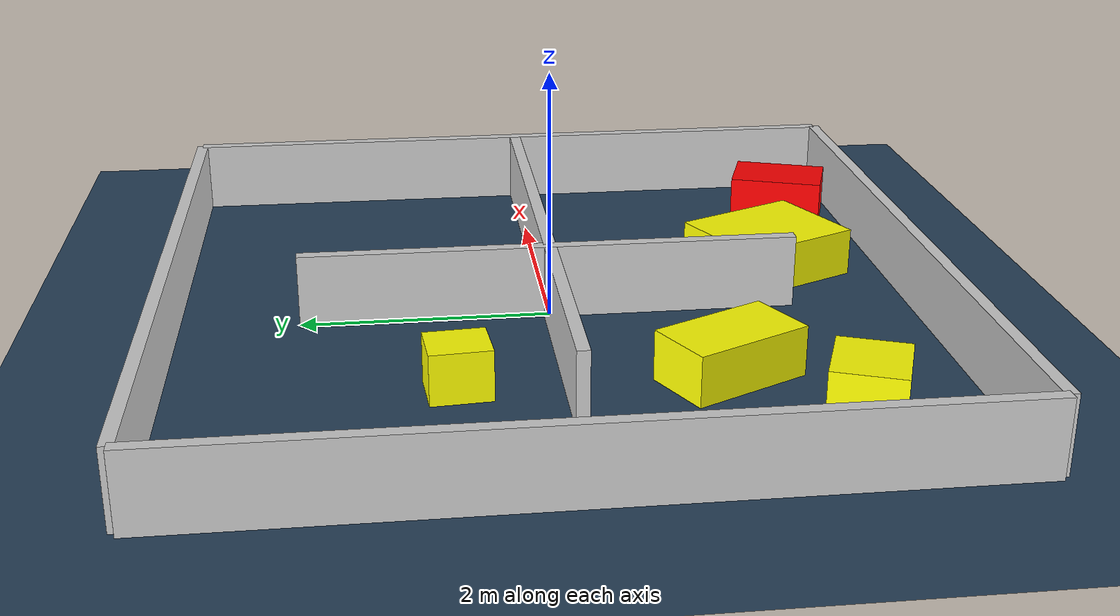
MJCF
<?xml version="1.0" ?>
<mujoco model="generated_environment">
  <option timestep="0.01" integrator="RK4" cone="elliptic"/>
  <default>
    <geom density="1"/>
  </default>
  <asset>
    <texture builtin="gradient" height="3072" rgb1="0.3 0.5 0.7" rgb2="0 0 0" type="skybox" width="512"/>
    <texture builtin="checker" height="300" mark="edge" markrgb="0.8 0.8 0.8" name="groundplane" rgb1="0.2 0.3 0.4" rgb2="0.1 0.2 0.3" type="2d" width="300"/>
    <material name="groundplane" reflectance="0.2" texrepeat="5 5" texture="groundplane" texuniform="true"/>
    <material name="robot" rgba="0.0 1.0 0.0 1"/>
  </asset>
  <worldbody>
    <light dir="0 0 -1" directional="true" pos="0 0 1.5"/>
    <geom condim="4" friction="1.0 0.005 0.001" material="groundplane" name="floor" size="0 0 0.05" type="plane"/>
    <body name="walls">
      <geom name="wall_1" condim="4" pos="-3.0 0.0 0.3" rgba="0.800000011920929 0.800000011920929 0.800000011920929 1.0" size="0.05 3.0 0.3" type="box"/>
      <geom name="wall_2" condim="4" pos="3.0 0.0 0.3" rgba="0.800000011920929 0.800000011920929 0.800000011920929 1.0" size="0.05 3.0 0.3" type="box"/>
      <geom name="wall_3" condim="4" pos="0.0 -3.0 0.3" rgba="0.800000011920929 0.800000011920929 0.800000011920929 1.0" size="3.0 0.05 0.3" type="box"/>
      <geom name="wall_4" condim="4" pos="0.0 3.0 0.3" rgba="0.800000011920929 0.800000011920929 0.800000011920929 1.0" size="3.0 0.05 0.3" type="box"/>
      <geom name="wall_5" condim="4" pos="1.5 0.0 0.3" rgba="0.800000011920929 0.800000011920929 0.800000011920929 1.0" size="1.5 0.05 0.3" type="box"/>
      <geom name="wall_6" condim="4" pos="-1.0 0.0 0.3" rgba="0.800000011920929 0.800000011920929 0.800000011920929 1.0" size="1.0 0.05 0.3" type="box"/>
      <geom name="wall_7" condim="4" pos="0.0 -1.0 0.3" rgba="0.800000011920929 0.800000011920929 0.800000011920929 1.0" size="0.05 1.0 0.3" type="box"/>
      <geom name="wall_8" condim="4" pos="0.0 1.0 0.3" rgba="0.800000011920929 0.800000011920929 0.800000011920929 1.0" size="0.05 1.0 0.3" type="box"/>
    </body>
    <body name="robot">
      <joint name="joint_x" type="slide" pos="0 0 0" axis="1 0 0"/>
      <joint name="joint_y" type="slide" pos="0 0 0" axis="0 1 0"/>
      <geom name="robot" type="sphere" pos="-0.14644789574801242 0.00581256195040547 0.2" size="0.05" mass="5." friction="1.0 0.005 0.0001" condim="4"/>
      <site name="sensor_ball"/>
    </body>
    <body name="obstacle_1_movable">
      <geom name="obstacle_1_movable" condim="4" pos="0.752635277069658 -1.9734942064960674 0.2" euler="0 0 24.912196658719644" friction="1.0 0.005 0.001" rgba="1 1 0 1" size="0.44771784830980266 0.5501451917374256 0.2" type="box" mass="0.1"/>
      <joint type="free"/>
    </body>
    <body name="obstacle_2_movable">
      <geom name="obstacle_2_movable" condim="4" pos="-1.3117955673742536 -1.186512296707222 0.2" euler="0 0 26.52845537571167" friction="1.0 0.005 0.001" rgba="1 1 0 1" size="0.2786379277734916 0.4934138375036003 0.2" type="box" mass="0.1"/>
      <joint type="free"/>
    </body>
    <body name="obstacle_3_movable">
      <geom name="obstacle_3_movable" condim="4" pos="-1.9168077438109754 -2.049947162761554 0.2" euler="0 0 338.6320005011556" friction="1.0 0.005 0.001" rgba="1 1 0 1" size="0.30613368902634924 0.27823862934967974 0.2" type="box" mass="0.1"/>
      <joint type="free"/>
    </body>
    <body name="obstacle_4_static">
      <geom name="obstacle_4_static" condim="4" pos="2.156344301238074 -2.434986930362343 0.2" euler="0 0 70.7318214516578" friction="1.0 0.005 0.001" rgba="1 0 0 1" size="0.40987272558213483 0.2830114416561137 0.2" type="box"/>
    </body>
    <body name="obstacle_5_movable">
      <geom name="obstacle_5_movable" condim="4" pos="-1.3163502430178324 0.8186518929585218 0.2" euler="0 0 274.53748553269776" friction="1.0 0.005 0.001" rgba="1 1 0 1" size="0.2365061314076122 0.2055829041870926 0.2" type="box" mass="0.1"/>
      <joint type="free"/>
    </body>
  </worldbody>
  <actuator>
    <motor name="actuator_x" joint="joint_x" gear="1" ctrlrange="-1 1"/>
    <motor name="actuator_y" joint="joint_y" gear="1" ctrlrange="-1 1"/>
  </actuator>
</mujoco>
